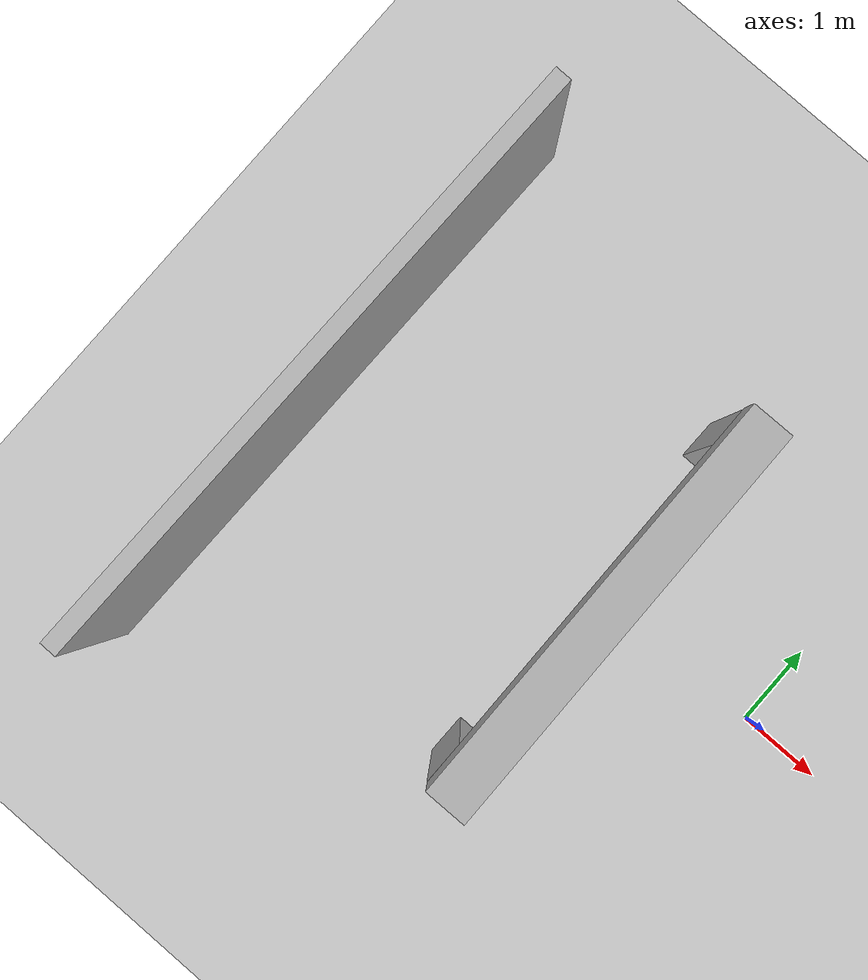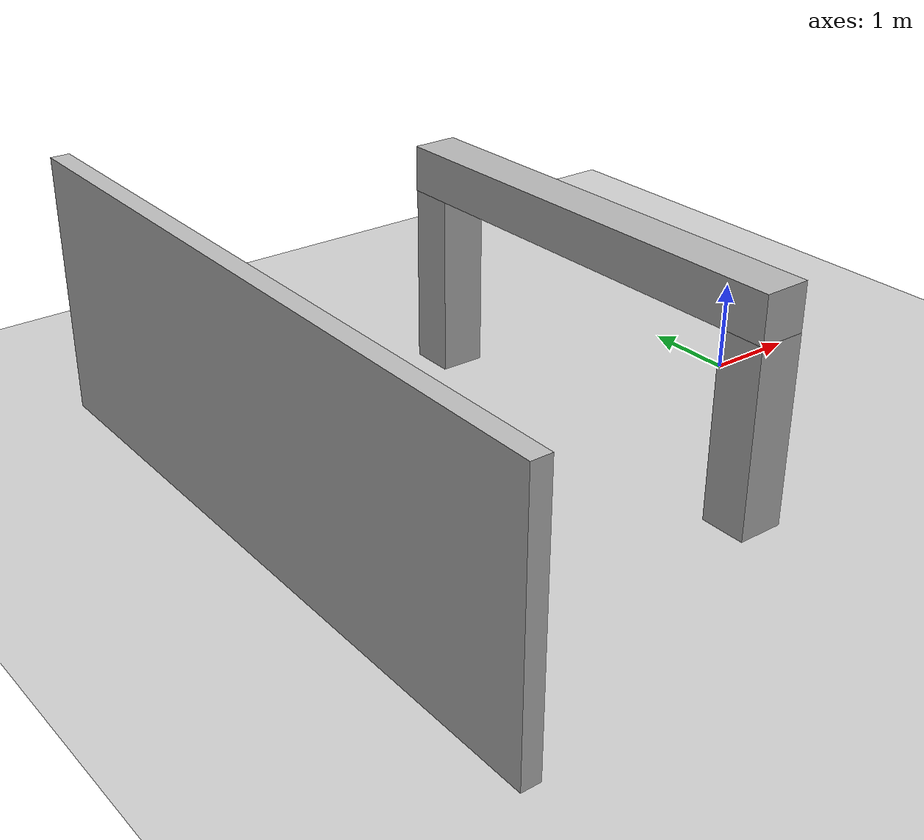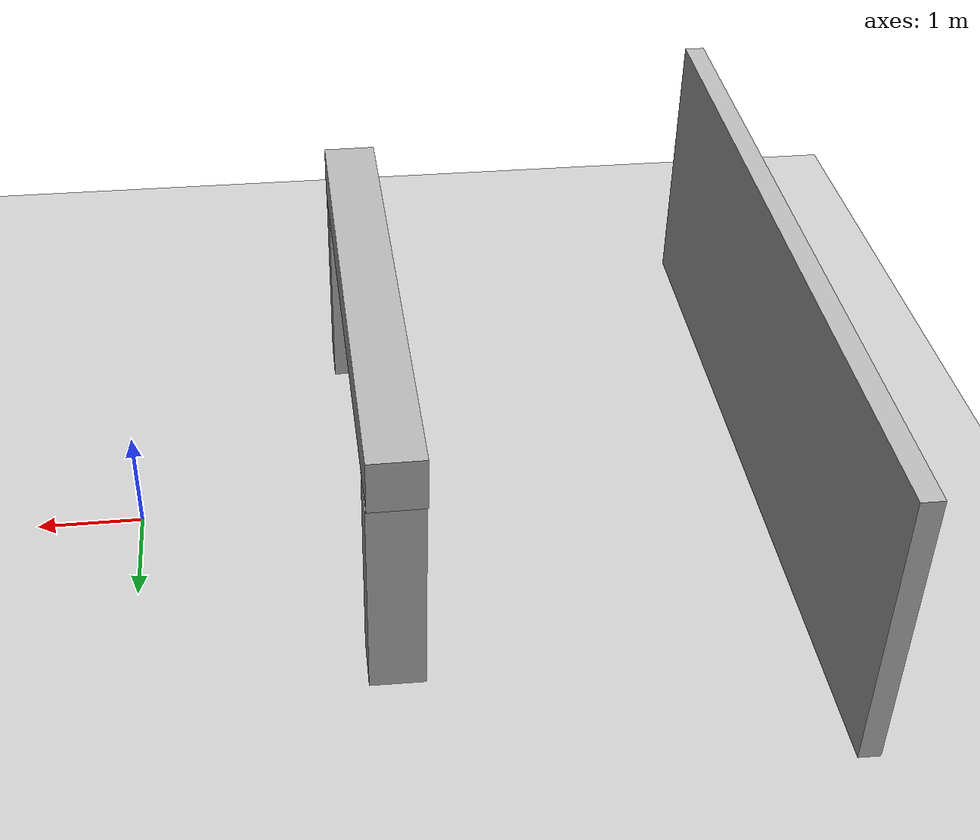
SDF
<sdf version="1.6">
 <plugin filename="ignition-gazebo-sensors-system" name="ignition::gazebo::systems::Sensors">
  <render_engine>ogre2</render_engine>
 </plugin>
 <world name="stage_1">
  <plugin filename="ignition-gazebo-sensors-system" name="ignition::gazebo::systems::Sensors">
   <render_engine>ogre2</render_engine>
  </plugin>
  <physics name="4ms" type="ignored">
   <max_step_size>0.004</max_step_size>
   <real_time_factor>1.0</real_time_factor>
  </physics>
  <plugin name="ignition::gazebo::systems::Physics" filename="ignition-gazebo-physics-system"/>
  <plugin name="ignition::gazebo::systems::UserCommands" filename="ignition-gazebo-user-commands-system"/>
  <plugin name="ignition::gazebo::systems::SceneBroadcaster" filename="ignition-gazebo-scene-broadcaster-system"/>
  <light name="sun" type="directional">
   <pose>0 0 10 0 -0 0</pose>
   <diffuse>0.8 0.8 0.8 1</diffuse>
   <specular>0.2 0.2 0.2 1</specular>
   <attenuation>
    <range>1000</range>
    <constant>0.9</constant>
    <linear>0.01</linear>
    <quadratic>0.001</quadratic>
   </attenuation>
   <direction>-0.5 0.1 -0.9</direction>
  </light>
  <model name="ground_plane">
   <static>true</static>
   <link name="link">
    <collision name="collision">
     <geometry><plane><normal>0 0 1</normal><size>100 100</size></plane></geometry>
    </collision>
    <visual name="visual">
     <geometry><plane><normal>0 0 1</normal><size>100 100</size></plane></geometry>
     <material>
      <ambient>0.8 0.8 0.8 1</ambient>
      <diffuse>0.8 0.8 0.8 1</diffuse>
      <specular>0.8 0.8 0.8 1</specular>
     </material>
    </visual>
   </link>
   <static>true</static>
  </model>
  <gravity>0 0 -9.8</gravity>
  <magnetic_field>6e-06 2.3e-05 -4.2e-05</magnetic_field>
  <atmosphere type="adiabatic"/>
  <physics name="default_physics" default="0" type="ode">
   <max_step_size>0.001</max_step_size>
   <real_time_factor>1</real_time_factor>
   <real_time_update_rate>1000</real_time_update_rate>
  </physics>
  <scene><ambient>0.4 0.4 0.4 1</ambient><background>0.7 0.7 0.7 1</background><shadows>1</shadows></scene>
  <spherical_coordinates>
   <surface_model>EARTH_WGS84</surface_model>
   <latitude_deg>0</latitude_deg>
   <longitude_deg>0</longitude_deg>
   <elevation>0</elevation>
   <heading_deg>0</heading_deg>
  </spherical_coordinates>
  <model name="column">
   <link name="link">
    <inertial>
     <mass>1</mass>
     <inertia>
      <ixx>0.166667</ixx>
      <ixy>0</ixy>
      <ixz>0</ixz>
      <iyy>0.166667</iyy>
      <iyz>0</iyz>
      <izz>0.166667</izz>
     </inertia>
    </inertial>
    <visual name="visual">
     <geometry><box><size>0.5 0.5 5</size></box></geometry>
     <material>
      <ambient>0.3 0.3 0.3 1</ambient>
      <diffuse>0.7 0.7 0.7 1</diffuse>
      <specular>0.01 0.01 0.01 1</specular>
      <emissive>0 0 0 1</emissive>
     </material>
    </visual>
    <collision name="collision"><geometry><box><size>0.5 0.5 5</size></box></geometry></collision>
   </link>
   <static>0</static>
   <pose>-2.27016 -0.159406 2.25 -1.5708 -1e-06 0.007984</pose>
  </model>
  <model name="column_clone_clone">
   <link name="link">
    <inertial>
     <mass>1</mass>
     <inertia>
      <ixx>0.166667</ixx>
      <ixy>0</ixy>
      <ixz>0</ixz>
      <iyy>0.166667</iyy>
      <iyz>0</iyz>
      <izz>0.166667</izz>
     </inertia>
    </inertial>
    <visual name="visual">
     <geometry><box><size>0.5 0.5 2</size></box></geometry>
     <material>
      <ambient>0.3 0.3 0.3 1</ambient>
      <diffuse>0.7 0.7 0.7 1</diffuse>
      <specular>0.01 0.01 0.01 1</specular>
      <emissive>0 0 0 1</emissive>
     </material>
    </visual>
    <collision name="collision"><geometry><box><size>0.5 0.5 2</size></box></geometry></collision>
   </link>
   <static>0</static>
   <pose>-2.25334 -2.41162 1 4e-06 -1e-06 -0.004459</pose>
  </model>
  <model name="column_clone">
   <link name="link">
    <inertial>
     <mass>1</mass>
     <inertia>
      <ixx>0.166667</ixx>
      <ixy>0</ixy>
      <ixz>0</ixz>
      <iyy>0.166667</iyy>
      <iyz>0</iyz>
      <izz>0.166667</izz>
     </inertia>
    </inertial>
    <visual name="visual">
     <geometry><box><size>0.5 0.5 2</size></box></geometry>
     <material>
      <ambient>0.3 0.3 0.3 1</ambient>
      <diffuse>0.7 0.7 0.7 1</diffuse>
      <specular>0.01 0.01 0.01 1</specular>
      <emissive>0 0 0 1</emissive>
     </material>
    </visual>
    <collision name="collision"><geometry><box><size>0.5 0.5 2</size></box></geometry></collision>
   </link>
   <static>0</static>
   <pose>-2.28181 2.08738 1 -1e-06 -0 -0.009076</pose>
  </model>
  <model name="grey_wall">
   <static>1</static>
   <link name="link">
    <pose>0 0 1.4 0 -0 0</pose>
    <collision name="collision"><geometry><box><size>7.5 0.2 2.8</size></box></geometry></collision>
    <visual name="visual">
     <cast_shadows>0</cast_shadows>
     <geometry><box><size>7.5 0.2 2.8</size></box></geometry>
    </visual>
   </link>
   <pose>-6.11502 -0.224184 0 0 0 -1.57929</pose>
  </model>
 </world>
</sdf>
